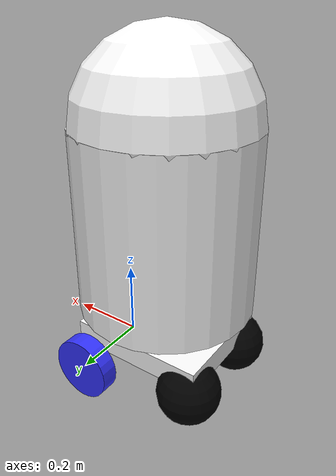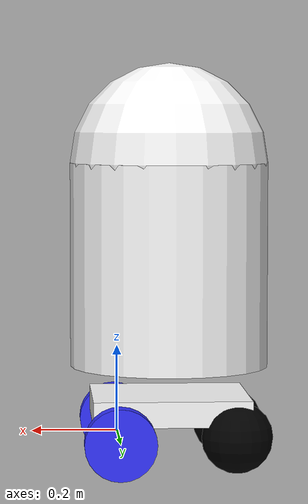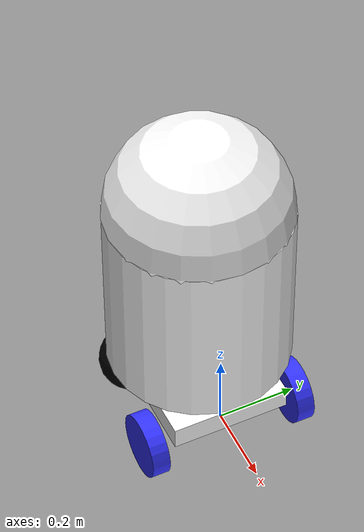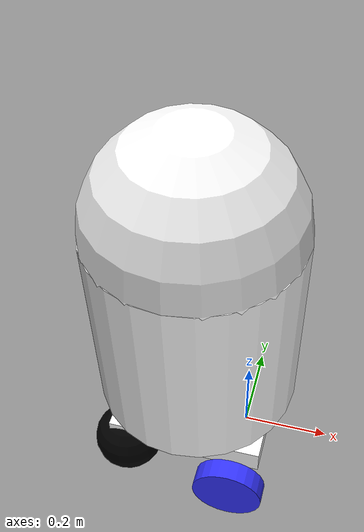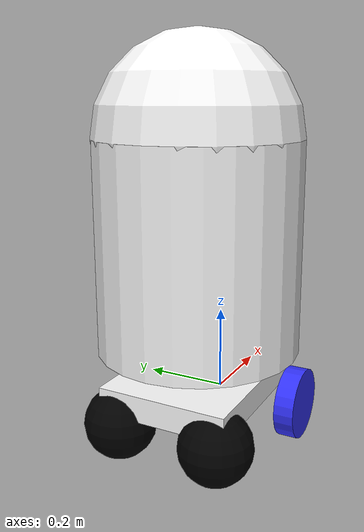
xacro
<?xml version="1.0"?>
<robot xmlns:xacro="http://www.ros.org/wiki/xacro" >
    <xacro:include filename="inertial_macros.xacro"/>

	<!-- Variables -->
	<xacro:property name="chassis_length" value="-0.365"/>
    <xacro:property name="chassis_width" value="0.305"/>
	<xacro:property name="chassis_height" value="0.06"/>
	<xacro:property name="chassis_base_x_offset" value ="0.060"/>
	<xacro:property name="chassis_base_y_offset" value ="0"/>
	<xacro:property name="chassis_base_z_offset" value ="0.028"/>
    <xacro:property name="chassis_mass" value="1.0"/>
    <xacro:property name="wheel_radius" value="0.08255"/>
    <xacro:property name="wheel_thickness" value="0.04635"/>
    <xacro:property name="wheel_mass" value="0.5"/>
    <xacro:property name="wheel_offset_x" value="0"/>
    <xacro:property name="wheel_offset_y" value="0.023"/>
    <xacro:property name="wheel_offset_z" value="0"/>
    <xacro:property name="caster_wheel_mass" value="0.5"/>
	<xacro:property name="caster_wheel_offset_x" value="-0.33175"/>
	<xacro:property name="caster_wheel_offset_y" value="0.11925"/>
    <xacro:property name="caster_wheel_offset_z" value="-${chassis_base_z_offset}"/>
	<xacro:property name="r2d2_height" value="0.47527"/>
	<xacro:property name="r2d2_radius" value="0.2315"/>
	<xacro:property name="r2d2_base_z_offset" value ="0.125038"/>

    <material name="white">
        <color rgba="1 1 1 1" />
    </material>

    <material name="orange">
        <color rgba="1 0.3 0.1 1"/>
    </material>

    <material name="blue">
        <color rgba="0.2 0.2 1 1"/>
    </material>

    <material name="black">
        <color rgba="0 0 0 1"/>
    </material>

    <material name="red">
        <color rgba="1 0 0 1"/>
    </material>

	<!-- BASE LINK -->

	<link name="base_link">
	</link>

	<joint name="base_footprint_joint" type="fixed">
        <parent link="base_link"/>
        <child link="base_footprint"/>
		<origin xyz="0 0 0" rpy="0 0 0"/>
    </joint>

	<link name="base_footprint">
	</link>

    <!-- Chasis -->

    <joint name="chasis_joint" type="fixed">
        <parent link="base_link"/>
        <child link="chassis"/>
		<origin xyz="${chassis_base_x_offset} ${chassis_base_y_offset} ${chassis_base_z_offset}" rpy="0 0 0"/>
    </joint>

	<link name="chassis">
		<visual>
			<origin xyz="${chassis_length/2} 0 ${chassis_height/2}"/>
			<geometry>
				<box size ="${chassis_length} ${chassis_width} ${chassis_height}"/>
			</geometry>
			<material name="white"/>
		</visual>
		<collision>
			<origin xyz="${chassis_length/2} 0 ${chassis_height/2}"/>
			<geometry>
				<box size ="${chassis_length} ${chassis_width} ${chassis_height}"/>
			</geometry>
		</collision>
		<xacro:inertial_box mass="${chassis_mass}" x="${chassis_length}" y="${chassis_width}" z="${chassis_height}">
			<origin xyz="${chassis_length/2} 0 0" rpy="0 0 0"/>
		</xacro:inertial_box>
    </link>

	<!-- R2D2 body -->

	<joint name="r2d2_body" type="fixed">
        <parent link="chassis"/>
        <child link="r2d2_chassis"/>
		<origin xyz="${chassis_length/2} 0 ${r2d2_base_z_offset + r2d2_height/2}" rpy="0 0 0"/>
    </joint>

	<link name="r2d2_chassis">
		<visual>
			<origin xyz="0 0 0"/>
			<geometry>
				<cylinder radius="${r2d2_radius}" length="${r2d2_height}"/>
			</geometry>
			<material name="white"/>
		</visual>
		<collision>
			<geometry>
				<cylinder radius="${r2d2_radius}" length="${r2d2_height}"/>
			</geometry>
		</collision>
		<xacro:inertial_cylinder mass="0.00001" radius="${r2d2_radius}" length="${r2d2_height}">
			<origin xyz="0 0 0" rpy="0 0 0"/>
		</xacro:inertial_cylinder>
    </link>

	<joint name="r2d2_head" type="fixed">
        <parent link="r2d2_chassis"/>
        <child link="head"/>
		<origin xyz="0 0 ${r2d2_height/2}" rpy="0 0 0"/>
    </joint>

	<link name="head">
		<visual>
			<origin xyz="0 0 0"/>
			<geometry>
				<sphere radius="${r2d2_radius}"/>
			</geometry>
			<material name="white"/>
		</visual>
		<collision>
			<geometry>
				<sphere radius="${r2d2_radius}"/>
			</geometry>
		</collision>
		<xacro:inertial_sphere mass="0.00001" radius="${r2d2_radius}">
			<origin xyz="0 0 0" rpy="0 0 0"/>
		</xacro:inertial_sphere>
    </link>

	<!-- Left wheel -->

	<joint name ="left_wheel_joint" type="continuous">
		<parent link="base_link"/>
		<child link="left_wheel"/>
		<origin xyz="0 ${chassis_width/2+wheel_thickness/2+wheel_offset_y} 0" rpy="-${pi/2} 0 0"/>
		<axis xyz="0 0 1"/>
	</joint>

	<link name="left_wheel">
		<visual>
			<geometry>
				<cylinder radius="${wheel_radius}" length="${wheel_thickness}"/>
			</geometry>
			<material name ="blue"/>
		</visual>
		<collision>
			<geometry>
				<sphere radius="${wheel_radius}"/>
			</geometry>
		</collision>
		<xacro:inertial_cylinder mass="${wheel_mass}" radius="${wheel_radius}" length="${wheel_thickness}">
			<origin xyz="0 0 0" rpy="0 0 0"/>
		</xacro:inertial_cylinder>

	</link>

	<!-- Right wheel -->

	<joint name ="right_wheel_joint" type="continuous">
		<parent link="base_link"/>
		<child link="right_wheel"/>
		<origin xyz="0 -${chassis_width/2+wheel_thickness/2+wheel_offset_y} 0" rpy="${pi/2} 0 0"/>
		<axis xyz="0 0 -1"/>
	</joint>

	<link name="right_wheel">
		<visual>
			<geometry>
				<cylinder radius="${wheel_radius}" length="${wheel_thickness}"/>
			</geometry>
			<material name ="blue"/>
		</visual>
		<collision>
			<geometry>
				<sphere radius="${wheel_radius}"/>
			</geometry>
		</collision>
		<xacro:inertial_cylinder mass="${wheel_mass}" radius="${wheel_radius}" length="${wheel_thickness}">
			<origin xyz="0 0 0" rpy="0 0 0"/>
		</xacro:inertial_cylinder>

	</link>

	<!-- Caster wheel -->

	<joint name ="left_caster_wheel" type="fixed">
		<parent link ="chassis"/>
		<child link ="left_caster"/>
		<origin xyz="${caster_wheel_offset_x} ${caster_wheel_offset_y} ${caster_wheel_offset_z}"/>
	</joint>

	<link name="left_caster">
		<visual>
			<geometry>
				<sphere radius="${wheel_radius}"/>
			</geometry>
			<material name ="black"/>
		</visual>
		<collision>
			<geometry>
				<sphere radius="${wheel_radius}"/>
			</geometry>
		</collision>
		<xacro:inertial_sphere mass="${caster_wheel_mass}" radius="${wheel_radius}">
			<origin xyz="0 0 0" rpy="0 0 0"/>
		</xacro:inertial_sphere>

	</link>

	<joint name ="right_caster_wheel" type="fixed">
		<parent link ="chassis"/>
		<child link ="right_caster"/>
		<origin xyz="${caster_wheel_offset_x} -${caster_wheel_offset_y} ${caster_wheel_offset_z}"/>
	</joint>

	<link name="right_caster">
		<visual>
			<geometry>
				<sphere radius="${wheel_radius}"/>
			</geometry>
			<material name ="black"/>
		</visual>
		<collision>
			<geometry>
				<sphere radius="${wheel_radius}"/>
			</geometry>
		</collision>
		<xacro:inertial_sphere mass="${caster_wheel_mass}" radius="${wheel_radius}">
			<origin xyz="0 0 0" rpy="0 0 0"/>
		</xacro:inertial_sphere>

	</link>

	<gazebo reference="left_caster">
		<mu1 value="0.001"/>
		<mu2 value="0.001"/>
	</gazebo>

	<gazebo reference="right_caster">
		<mu1 value="0.001"/>
		<mu2 value="0.001"/>
	</gazebo>

</robot>
